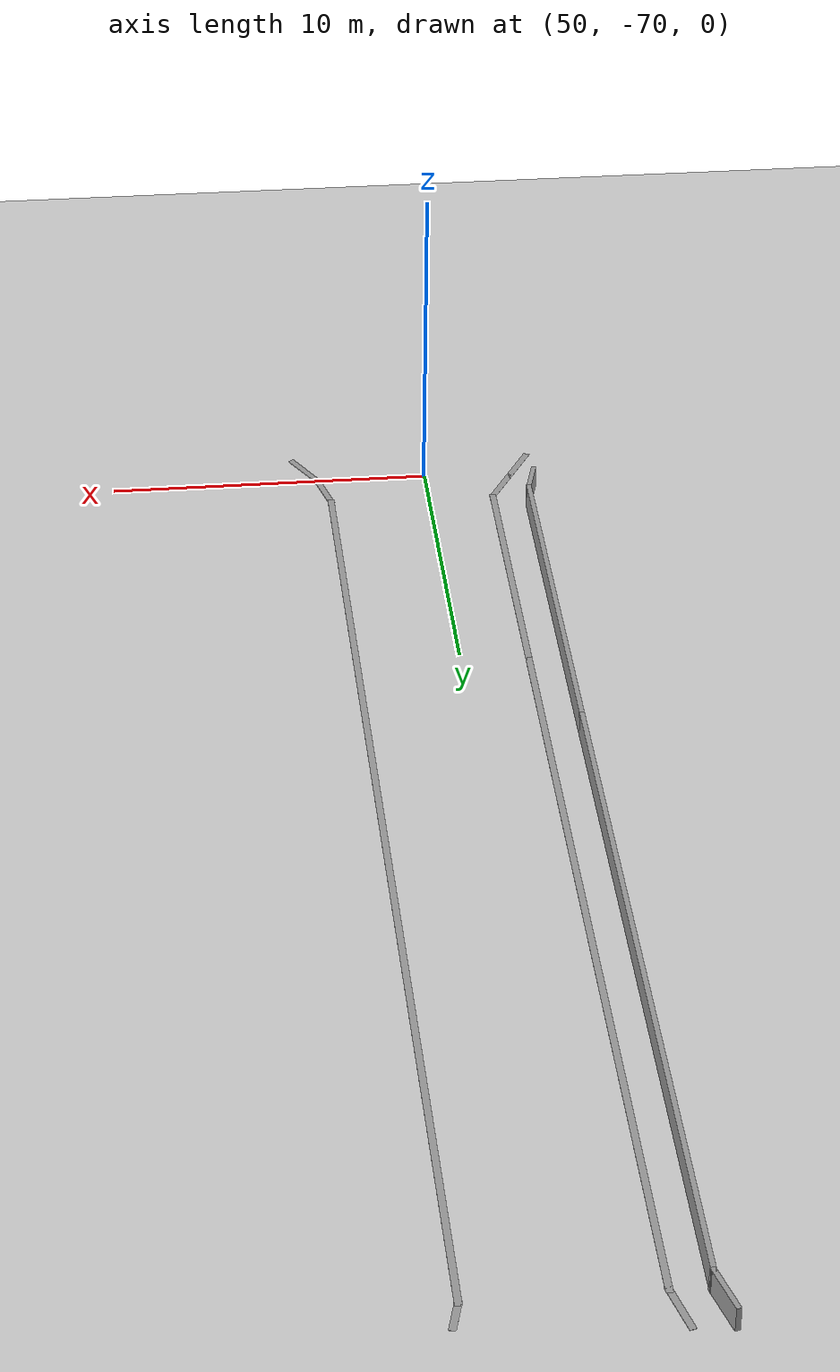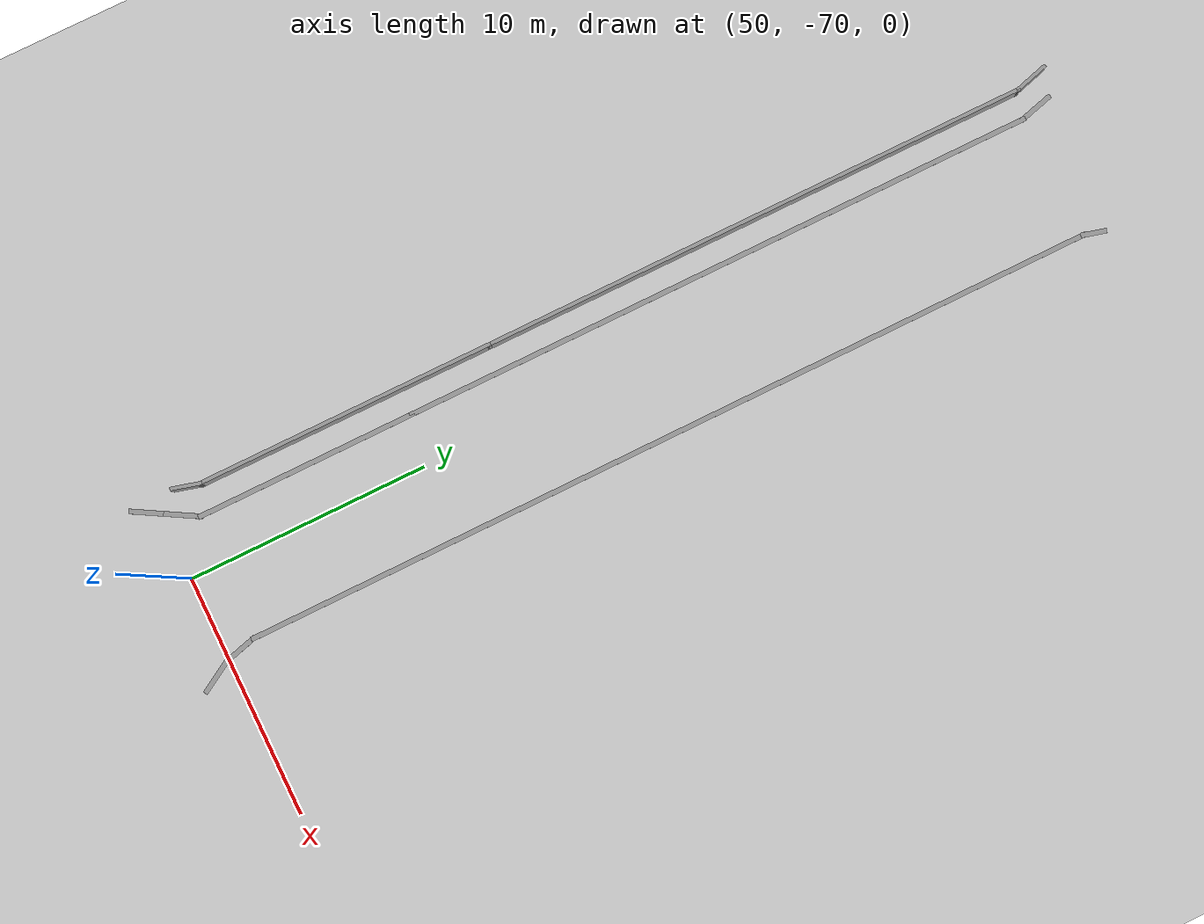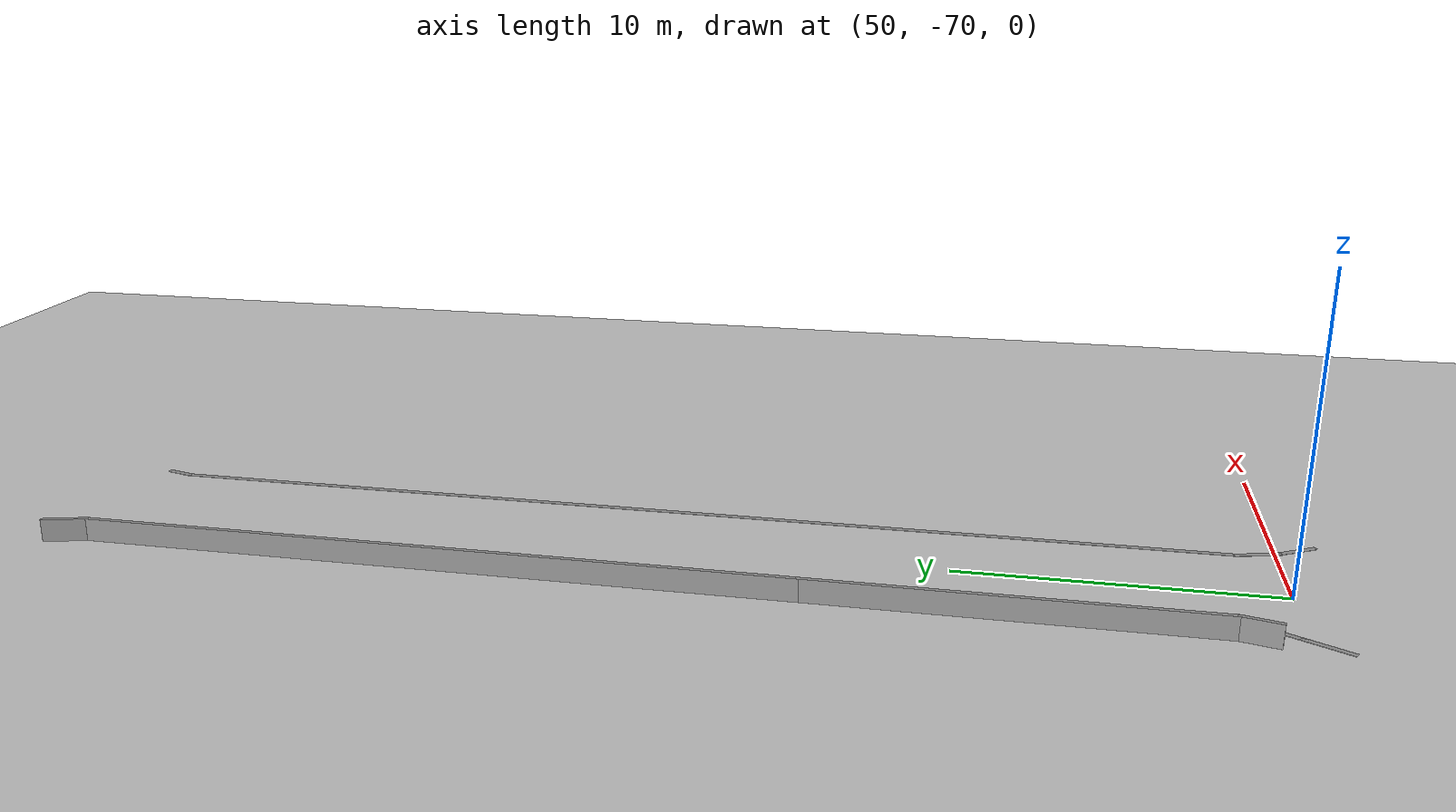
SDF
<sdf version="1.6">
 <world name="default">
  <model name="ground_plane">
   <static>1</static>
   <link name="link">
    <collision name="collision">
     <geometry><plane><normal>0 0 1</normal><size>100 100</size></plane></geometry>
     <surface>
      <contact><collide_bitmask>65535</collide_bitmask></contact>
      <friction><ode><mu>100</mu><mu2>50</mu2></ode></friction>
     </surface>
    </collision>
    <visual name="visual">
     <cast_shadows>0</cast_shadows>
     <geometry><plane><normal>0 0 1</normal><size>100 100</size></plane></geometry>
     <material>
      <script><uri>file://media/materials/scripts/gazebo.material</uri><name>Gazebo/Grey</name></script>
     </material>
    </visual>
   </link>
  </model>
  <model name="GercekDuvarSeritKoyu1">
   <link name="Wall_110">
    <pose>13.8411 -13.2151 0 0 -0 2.87941</pose>
    <inertial>
     <mass>1</mass>
     <inertia><ixx>1</ixx><ixy>0</ixy><ixz>0</ixz><iyy>1</iyy><iyz>0</iyz><izz>1</izz></inertia>
    </inertial>
    <visual name="Wall_110_Visual">
     <pose>0 0 0.375 0 -0 0</pose>
     <geometry><box><size>1.25 0.15 0.75</size></box></geometry>
     <material>
      <script><uri>file://media/materials/scripts/gazebo.material</uri><name>Gazebo/Grey</name></script>
      <ambient>0.5 0.5 0.5 1</ambient>
      <shader type="pixel"><normal_map>__default__</normal_map></shader>
      <diffuse>0.7 0.7 0.7 1</diffuse>
      <specular>0.01 0.01 0.01 1</specular>
      <emissive>0 0 0 1</emissive>
     </material>
     <meta><layer>0</layer></meta>
    </visual>
    <collision name="Wall_110_Collision">
     <pose>0 0 0.375 0 -0 0</pose>
     <geometry><box><size>1.25 0.15 0.75</size></box></geometry>
     <surface>
      <friction>
       <ode><mu>1</mu><mu2>1</mu2><fdir1>0 0 0</fdir1><slip1>0</slip1><slip2>0</slip2></ode>
       <torsional>
        <coefficient>1</coefficient>
        <patch_radius>0</patch_radius>
        <surface_radius>0</surface_radius>
        <use_patch_radius>1</use_patch_radius>
        <ode><slip>0</slip></ode>
       </torsional>
      </friction>
      <bounce><restitution_coefficient>0</restitution_coefficient><threshold>1e+06</threshold></bounce>
      <contact>
       <collide_without_contact>0</collide_without_contact>
       <collide_without_contact_bitmask>1</collide_without_contact_bitmask>
       <collide_bitmask>1</collide_bitmask>
       <ode>
        <soft_cfm>0</soft_cfm>
        <soft_erp>0.2</soft_erp>
        <kp>1e+13</kp>
        <kd>1</kd>
        <max_vel>0.01</max_vel>
        <min_depth>0</min_depth>
       </ode>
       <bullet>
        <split_impulse>1</split_impulse>
        <split_impulse_penetration_threshold>-0.01</split_impulse_penetration_threshold>
        <soft_cfm>0</soft_cfm>
        <soft_erp>0.2</soft_erp>
        <kp>1e+13</kp>
        <kd>1</kd>
       </bullet>
      </contact>
     </surface>
    </collision>
   </link>
   <link name="Wall_111">
    <pose>7.13506 -13.0626 0 0 -0 3.13997</pose>
    <inertial>
     <mass>1</mass>
     <inertia><ixx>1</ixx><ixy>0</ixy><ixz>0</ixz><iyy>1</iyy><iyz>0</iyz><izz>1</izz></inertia>
    </inertial>
    <visual name="Wall_111_Visual">
     <pose>0 0 0.375 0 -0 0</pose>
     <geometry><box><size>12.5 0.15 0.75</size></box></geometry>
     <material>
      <script><uri>file://media/materials/scripts/gazebo.material</uri><name>Gazebo/Grey</name></script>
      <ambient>0.5 0.5 0.5 1</ambient>
      <shader type="pixel"><normal_map>__default__</normal_map></shader>
      <diffuse>0.7 0.7 0.7 1</diffuse>
      <specular>0.01 0.01 0.01 1</specular>
      <emissive>0 0 0 1</emissive>
     </material>
     <meta><layer>0</layer></meta>
    </visual>
    <collision name="Wall_111_Collision">
     <pose>0 0 0.375 0 -0 0</pose>
     <geometry><box><size>12.5 0.15 0.75</size></box></geometry>
     <surface>
      <friction>
       <ode><mu>1</mu><mu2>1</mu2><fdir1>0 0 0</fdir1><slip1>0</slip1><slip2>0</slip2></ode>
       <torsional>
        <coefficient>1</coefficient>
        <patch_radius>0</patch_radius>
        <surface_radius>0</surface_radius>
        <use_patch_radius>1</use_patch_radius>
        <ode><slip>0</slip></ode>
       </torsional>
      </friction>
      <bounce><restitution_coefficient>0</restitution_coefficient><threshold>1e+06</threshold></bounce>
      <contact>
       <collide_without_contact>0</collide_without_contact>
       <collide_without_contact_bitmask>1</collide_without_contact_bitmask>
       <collide_bitmask>1</collide_bitmask>
       <ode>
        <soft_cfm>0</soft_cfm>
        <soft_erp>0.2</soft_erp>
        <kp>1e+13</kp>
        <kd>1</kd>
        <max_vel>0.01</max_vel>
        <min_depth>0</min_depth>
       </ode>
       <bullet>
        <split_impulse>1</split_impulse>
        <split_impulse_penetration_threshold>-0.01</split_impulse_penetration_threshold>
        <soft_cfm>0</soft_cfm>
        <soft_erp>0.2</soft_erp>
        <kp>1e+13</kp>
        <kd>1</kd>
       </bullet>
      </contact>
     </surface>
    </collision>
   </link>
   <link name="Wall_113">
    <pose>-10.5899 -13.0526 0 0 -0 3.14159</pose>
    <inertial>
     <mass>1</mass>
     <inertia><ixx>1</ixx><ixy>0</ixy><ixz>0</ixz><iyy>1</iyy><iyz>0</iyz><izz>1</izz></inertia>
    </inertial>
    <visual name="Wall_113_Visual">
     <pose>0 0 0.375 0 -0 0</pose>
     <geometry><box><size>23.25 0.15 0.75</size></box></geometry>
     <material>
      <script><uri>file://media/materials/scripts/gazebo.material</uri><name>Gazebo/Grey</name></script>
      <ambient>0.5 0.5 0.5 1</ambient>
      <shader type="pixel"><normal_map>__default__</normal_map></shader>
      <diffuse>0.7 0.7 0.7 1</diffuse>
      <specular>0.01 0.01 0.01 1</specular>
      <emissive>0 0 0 1</emissive>
     </material>
     <meta><layer>0</layer></meta>
    </visual>
    <collision name="Wall_113_Collision">
     <pose>0 0 0.375 0 -0 0</pose>
     <geometry><box><size>23.25 0.15 0.75</size></box></geometry>
     <surface>
      <friction>
       <ode><mu>1</mu><mu2>1</mu2><fdir1>0 0 0</fdir1><slip1>0</slip1><slip2>0</slip2></ode>
       <torsional>
        <coefficient>1</coefficient>
        <patch_radius>0</patch_radius>
        <surface_radius>0</surface_radius>
        <use_patch_radius>1</use_patch_radius>
        <ode><slip>0</slip></ode>
       </torsional>
      </friction>
      <bounce><restitution_coefficient>0</restitution_coefficient><threshold>1e+06</threshold></bounce>
      <contact>
       <collide_without_contact>0</collide_without_contact>
       <collide_without_contact_bitmask>1</collide_without_contact_bitmask>
       <collide_bitmask>1</collide_bitmask>
       <ode>
        <soft_cfm>0</soft_cfm>
        <soft_erp>0.2</soft_erp>
        <kp>1e+13</kp>
        <kd>1</kd>
        <max_vel>0.01</max_vel>
        <min_depth>0</min_depth>
       </ode>
       <bullet>
        <split_impulse>1</split_impulse>
        <split_impulse_penetration_threshold>-0.01</split_impulse_penetration_threshold>
        <soft_cfm>0</soft_cfm>
        <soft_erp>0.2</soft_erp>
        <kp>1e+13</kp>
        <kd>1</kd>
       </bullet>
      </contact>
     </surface>
    </collision>
   </link>
   <link name="Wall_114">
    <pose>-22.7919 -13.2376 0 0 0 -2.86512</pose>
    <inertial>
     <mass>1</mass>
     <inertia><ixx>1</ixx><ixy>0</ixy><ixz>0</ixz><iyy>1</iyy><iyz>0</iyz><izz>1</izz></inertia>
    </inertial>
    <visual name="Wall_114_Visual">
     <pose>0 0 0.375 0 -0 0</pose>
     <geometry><box><size>1.50579 0.15 0.75</size></box></geometry>
     <material>
      <script><uri>file://media/materials/scripts/gazebo.material</uri><name>Gazebo/Grey</name></script>
      <ambient>0.5 0.5 0.5 1</ambient>
      <shader type="pixel"><normal_map>__default__</normal_map></shader>
      <diffuse>0.7 0.7 0.7 1</diffuse>
      <specular>0.01 0.01 0.01 1</specular>
      <emissive>0 0 0 1</emissive>
     </material>
     <meta><layer>0</layer></meta>
    </visual>
    <collision name="Wall_114_Collision">
     <pose>0 0 0.375 0 -0 0</pose>
     <geometry><box><size>1.50579 0.15 0.75</size></box></geometry>
     <surface>
      <friction>
       <ode><mu>1</mu><mu2>1</mu2><fdir1>0 0 0</fdir1><slip1>0</slip1><slip2>0</slip2></ode>
       <torsional>
        <coefficient>1</coefficient>
        <patch_radius>0</patch_radius>
        <surface_radius>0</surface_radius>
        <use_patch_radius>1</use_patch_radius>
        <ode><slip>0</slip></ode>
       </torsional>
      </friction>
      <bounce><restitution_coefficient>0</restitution_coefficient><threshold>1e+06</threshold></bounce>
      <contact>
       <collide_without_contact>0</collide_without_contact>
       <collide_without_contact_bitmask>1</collide_without_contact_bitmask>
       <collide_bitmask>1</collide_bitmask>
       <ode>
        <soft_cfm>0</soft_cfm>
        <soft_erp>0.2</soft_erp>
        <kp>1e+13</kp>
        <kd>1</kd>
        <max_vel>0.01</max_vel>
        <min_depth>0</min_depth>
       </ode>
       <bullet>
        <split_impulse>1</split_impulse>
        <split_impulse_penetration_threshold>-0.01</split_impulse_penetration_threshold>
        <soft_cfm>0</soft_cfm>
        <soft_erp>0.2</soft_erp>
        <kp>1e+13</kp>
        <kd>1</kd>
       </bullet>
      </contact>
     </surface>
    </collision>
   </link>
   <link name="Wall_398">
    <pose>15.7111 -13.0251 0 0 -0 2.61831</pose>
    <visual name="Wall_398_Visual">
     <pose>0 0 0.005 0 -0 0</pose>
     <geometry><box><size>1.55029 0.2 0.01</size></box></geometry>
     <material>
      <script><uri>file://media/materials/scripts/gazebo.material</uri><name>Gazebo/Grey</name></script>
      <ambient>1 1 1 1</ambient>
      <shader type="pixel"/>
     </material>
     <meta><layer>0</layer></meta>
    </visual>
    <collision name="Wall_398_Collision">
     <pose>0 0 0.005 0 -0 0</pose>
     <geometry><box><size>1.55029 0.2 0.01</size></box></geometry>
     <surface>
      <friction>
       <ode><mu>1</mu><mu2>1</mu2><fdir1>0 0 0</fdir1><slip1>0</slip1><slip2>0</slip2></ode>
       <torsional>
        <coefficient>1</coefficient>
        <patch_radius>0</patch_radius>
        <surface_radius>0</surface_radius>
        <use_patch_radius>1</use_patch_radius>
        <ode><slip>0</slip></ode>
       </torsional>
      </friction>
      <bounce><restitution_coefficient>0</restitution_coefficient><threshold>1e+06</threshold></bounce>
      <contact>
       <collide_without_contact>0</collide_without_contact>
       <collide_without_contact_bitmask>1</collide_without_contact_bitmask>
       <collide_bitmask>1</collide_bitmask>
       <ode>
        <soft_cfm>0</soft_cfm>
        <soft_erp>0.2</soft_erp>
        <kp>1e+13</kp>
        <kd>1</kd>
        <max_vel>0.01</max_vel>
        <min_depth>0</min_depth>
       </ode>
       <bullet>
        <split_impulse>1</split_impulse>
        <split_impulse_penetration_threshold>-0.01</split_impulse_penetration_threshold>
        <soft_cfm>0</soft_cfm>
        <soft_erp>0.2</soft_erp>
        <kp>1e+13</kp>
        <kd>1</kd>
       </bullet>
      </contact>
     </surface>
    </collision>
   </link>
   <link name="Wall_399">
    <pose>14.5416 -12.3501 0 0 -0 2.61794</pose>
    <visual name="Wall_399_Visual">
     <pose>0 0 0.005 0 -0 0</pose>
     <geometry><box><size>1.54954 0.2 0.01</size></box></geometry>
     <material>
      <script><uri>file://media/materials/scripts/gazebo.material</uri><name>Gazebo/Grey</name></script>
      <ambient>1 1 1 1</ambient>
      <shader type="pixel"/>
     </material>
     <meta><layer>0</layer></meta>
    </visual>
    <collision name="Wall_399_Collision">
     <pose>0 0 0.005 0 -0 0</pose>
     <geometry><box><size>1.54954 0.2 0.01</size></box></geometry>
     <surface>
      <friction>
       <ode><mu>1</mu><mu2>1</mu2><fdir1>0 0 0</fdir1><slip1>0</slip1><slip2>0</slip2></ode>
       <torsional>
        <coefficient>1</coefficient>
        <patch_radius>0</patch_radius>
        <surface_radius>0</surface_radius>
        <use_patch_radius>1</use_patch_radius>
        <ode><slip>0</slip></ode>
       </torsional>
      </friction>
      <bounce><restitution_coefficient>0</restitution_coefficient><threshold>1e+06</threshold></bounce>
      <contact>
       <collide_without_contact>0</collide_without_contact>
       <collide_without_contact_bitmask>1</collide_without_contact_bitmask>
       <collide_bitmask>1</collide_bitmask>
       <ode>
        <soft_cfm>0</soft_cfm>
        <soft_erp>0.2</soft_erp>
        <kp>1e+13</kp>
        <kd>1</kd>
        <max_vel>0.01</max_vel>
        <min_depth>0</min_depth>
       </ode>
       <bullet>
        <split_impulse>1</split_impulse>
        <split_impulse_penetration_threshold>-0.01</split_impulse_penetration_threshold>
        <soft_cfm>0</soft_cfm>
        <soft_erp>0.2</soft_erp>
        <kp>1e+13</kp>
        <kd>1</kd>
       </bullet>
      </contact>
     </surface>
    </collision>
   </link>
   <link name="Wall_400">
    <pose>9.40705 -12.0126 0 0 -0 3.14159</pose>
    <visual name="Wall_400_Visual">
     <pose>0 0 0.005 0 -0 0</pose>
     <geometry><box><size>9.29969 0.2 0.01</size></box></geometry>
     <material>
      <script><uri>file://media/materials/scripts/gazebo.material</uri><name>Gazebo/Grey</name></script>
      <ambient>1 1 1 1</ambient>
      <shader type="pixel"/>
     </material>
     <meta><layer>0</layer></meta>
    </visual>
    <collision name="Wall_400_Collision">
     <pose>0 0 0.005 0 -0 0</pose>
     <geometry><box><size>9.29969 0.2 0.01</size></box></geometry>
     <surface>
      <friction>
       <ode><mu>1</mu><mu2>1</mu2><fdir1>0 0 0</fdir1><slip1>0</slip1><slip2>0</slip2></ode>
       <torsional>
        <coefficient>1</coefficient>
        <patch_radius>0</patch_radius>
        <surface_radius>0</surface_radius>
        <use_patch_radius>1</use_patch_radius>
        <ode><slip>0</slip></ode>
       </torsional>
      </friction>
      <bounce><restitution_coefficient>0</restitution_coefficient><threshold>1e+06</threshold></bounce>
      <contact>
       <collide_without_contact>0</collide_without_contact>
       <collide_without_contact_bitmask>1</collide_without_contact_bitmask>
       <collide_bitmask>1</collide_bitmask>
       <ode>
        <soft_cfm>0</soft_cfm>
        <soft_erp>0.2</soft_erp>
        <kp>1e+13</kp>
        <kd>1</kd>
        <max_vel>0.01</max_vel>
        <min_depth>0</min_depth>
       </ode>
       <bullet>
        <split_impulse>1</split_impulse>
        <split_impulse_penetration_threshold>-0.01</split_impulse_penetration_threshold>
        <soft_cfm>0</soft_cfm>
        <soft_erp>0.2</soft_erp>
        <kp>1e+13</kp>
        <kd>1</kd>
       </bullet>
      </contact>
     </surface>
    </collision>
   </link>
   <link name="Wall_402">
    <pose>-8.56794 -12.0126 0 0 -0 3.14159</pose>
    <visual name="Wall_402_Visual">
     <pose>0 0 0.005 0 -0 0</pose>
     <geometry><box><size>27.0497 0.2 0.01</size></box></geometry>
     <material>
      <script><uri>file://media/materials/scripts/gazebo.material</uri><name>Gazebo/Grey</name></script>
      <ambient>1 1 1 1</ambient>
      <shader type="pixel"/>
     </material>
     <meta><layer>0</layer></meta>
    </visual>
    <collision name="Wall_402_Collision">
     <pose>0 0 0.005 0 -0 0</pose>
     <geometry><box><size>27.0497 0.2 0.01</size></box></geometry>
     <surface>
      <friction>
       <ode><mu>1</mu><mu2>1</mu2><fdir1>0 0 0</fdir1><slip1>0</slip1><slip2>0</slip2></ode>
       <torsional>
        <coefficient>1</coefficient>
        <patch_radius>0</patch_radius>
        <surface_radius>0</surface_radius>
        <use_patch_radius>1</use_patch_radius>
        <ode><slip>0</slip></ode>
       </torsional>
      </friction>
      <bounce><restitution_coefficient>0</restitution_coefficient><threshold>1e+06</threshold></bounce>
      <contact>
       <collide_without_contact>0</collide_without_contact>
       <collide_without_contact_bitmask>1</collide_without_contact_bitmask>
       <collide_bitmask>1</collide_bitmask>
       <ode>
        <soft_cfm>0</soft_cfm>
        <soft_erp>0.2</soft_erp>
        <kp>1e+13</kp>
        <kd>1</kd>
        <max_vel>0.01</max_vel>
        <min_depth>0</min_depth>
       </ode>
       <bullet>
        <split_impulse>1</split_impulse>
        <split_impulse_penetration_threshold>-0.01</split_impulse_penetration_threshold>
        <soft_cfm>0</soft_cfm>
        <soft_erp>0.2</soft_erp>
        <kp>1e+13</kp>
        <kd>1</kd>
       </bullet>
      </contact>
     </surface>
    </collision>
   </link>
   <link name="Wall_404">
    <pose>-22.6449 -12.1876 0 0 0 -2.87937</pose>
    <visual name="Wall_404_Visual">
     <pose>0 0 0.005 0 -0 0</pose>
     <geometry><box><size>1.54974 0.2 0.01</size></box></geometry>
     <material>
      <script><uri>file://media/materials/scripts/gazebo.material</uri><name>Gazebo/Grey</name></script>
      <ambient>1 1 1 1</ambient>
      <shader type="pixel"/>
     </material>
     <meta><layer>0</layer></meta>
    </visual>
    <collision name="Wall_404_Collision">
     <pose>0 0 0.005 0 -0 0</pose>
     <geometry><box><size>1.54974 0.2 0.01</size></box></geometry>
     <surface>
      <friction>
       <ode><mu>1</mu><mu2>1</mu2><fdir1>0 0 0</fdir1><slip1>0</slip1><slip2>0</slip2></ode>
       <torsional>
        <coefficient>1</coefficient>
        <patch_radius>0</patch_radius>
        <surface_radius>0</surface_radius>
        <use_patch_radius>1</use_patch_radius>
        <ode><slip>0</slip></ode>
       </torsional>
      </friction>
      <bounce><restitution_coefficient>0</restitution_coefficient><threshold>1e+06</threshold></bounce>
      <contact>
       <collide_without_contact>0</collide_without_contact>
       <collide_without_contact_bitmask>1</collide_without_contact_bitmask>
       <collide_bitmask>1</collide_bitmask>
       <ode>
        <soft_cfm>0</soft_cfm>
        <soft_erp>0.2</soft_erp>
        <kp>1e+13</kp>
        <kd>1</kd>
        <max_vel>0.01</max_vel>
        <min_depth>0</min_depth>
       </ode>
       <bullet>
        <split_impulse>1</split_impulse>
        <split_impulse_penetration_threshold>-0.01</split_impulse_penetration_threshold>
        <soft_cfm>0</soft_cfm>
        <soft_erp>0.2</soft_erp>
        <kp>1e+13</kp>
        <kd>1</kd>
       </bullet>
      </contact>
     </surface>
    </collision>
   </link>
   <link name="Wall_526">
    <pose>-3.94694 -6.82159 0 0 -0 0</pose>
    <visual name="Wall_526_Visual">
     <pose>0 0 0.005 0 -0 0</pose>
     <geometry><box><size>36.2999 0.2 0.01</size></box></geometry>
     <material>
      <script><uri>file://media/materials/scripts/gazebo.material</uri><name>Gazebo/Grey</name></script>
      <ambient>1 1 1 1</ambient>
      <shader type="pixel"/>
     </material>
     <meta><layer>0</layer></meta>
    </visual>
    <collision name="Wall_526_Collision">
     <pose>0 0 0.005 0 -0 0</pose>
     <geometry><box><size>36.2999 0.2 0.01</size></box></geometry>
     <surface>
      <friction>
       <ode><mu>1</mu><mu2>1</mu2><fdir1>0 0 0</fdir1><slip1>0</slip1><slip2>0</slip2></ode>
       <torsional>
        <coefficient>1</coefficient>
        <patch_radius>0</patch_radius>
        <surface_radius>0</surface_radius>
        <use_patch_radius>1</use_patch_radius>
        <ode><slip>0</slip></ode>
       </torsional>
      </friction>
      <bounce><restitution_coefficient>0</restitution_coefficient><threshold>1e+06</threshold></bounce>
      <contact>
       <collide_without_contact>0</collide_without_contact>
       <collide_without_contact_bitmask>1</collide_without_contact_bitmask>
       <collide_bitmask>1</collide_bitmask>
       <ode>
        <soft_cfm>0</soft_cfm>
        <soft_erp>0.2</soft_erp>
        <kp>1e+13</kp>
        <kd>1</kd>
        <max_vel>0.01</max_vel>
        <min_depth>0</min_depth>
       </ode>
       <bullet>
        <split_impulse>1</split_impulse>
        <split_impulse_penetration_threshold>-0.01</split_impulse_penetration_threshold>
        <soft_cfm>0</soft_cfm>
        <soft_erp>0.2</soft_erp>
        <kp>1e+13</kp>
        <kd>1</kd>
       </bullet>
      </contact>
     </surface>
    </collision>
   </link>
   <link name="Wall_528">
    <pose>14.7551 -6.64709 0 0 -0 0.261509</pose>
    <visual name="Wall_528_Visual">
     <pose>0 0 0.005 0 -0 0</pose>
     <geometry><box><size>1.54978 0.2 0.01</size></box></geometry>
     <material>
      <script><uri>file://media/materials/scripts/gazebo.material</uri><name>Gazebo/Grey</name></script>
      <ambient>1 1 1 1</ambient>
      <shader type="pixel"/>
     </material>
     <meta><layer>0</layer></meta>
    </visual>
    <collision name="Wall_528_Collision">
     <pose>0 0 0.005 0 -0 0</pose>
     <geometry><box><size>1.54978 0.2 0.01</size></box></geometry>
     <surface>
      <friction>
       <ode><mu>1</mu><mu2>1</mu2><fdir1>0 0 0</fdir1><slip1>0</slip1><slip2>0</slip2></ode>
       <torsional>
        <coefficient>1</coefficient>
        <patch_radius>0</patch_radius>
        <surface_radius>0</surface_radius>
        <use_patch_radius>1</use_patch_radius>
        <ode><slip>0</slip></ode>
       </torsional>
      </friction>
      <bounce><restitution_coefficient>0</restitution_coefficient><threshold>1e+06</threshold></bounce>
      <contact>
       <collide_without_contact>0</collide_without_contact>
       <collide_without_contact_bitmask>1</collide_without_contact_bitmask>
       <collide_bitmask>1</collide_bitmask>
       <ode>
        <soft_cfm>0</soft_cfm>
        <soft_erp>0.2</soft_erp>
        <kp>1e+13</kp>
        <kd>1</kd>
        <max_vel>0.01</max_vel>
        <min_depth>0</min_depth>
       </ode>
       <bullet>
        <split_impulse>1</split_impulse>
        <split_impulse_penetration_threshold>-0.01</split_impulse_penetration_threshold>
        <soft_cfm>0</soft_cfm>
        <soft_erp>0.2</soft_erp>
        <kp>1e+13</kp>
        <kd>1</kd>
       </bullet>
      </contact>
     </surface>
    </collision>
   </link>
   <link name="Wall_529">
    <pose>15.9916 -6.12609 0 0 -0 0.535119</pose>
    <visual name="Wall_529_Visual">
     <pose>0 0 0.005 0 -0 0</pose>
     <geometry><box><size>1.55897 0.2 0.01</size></box></geometry>
     <material>
      <script><uri>file://media/materials/scripts/gazebo.material</uri><name>Gazebo/Grey</name></script>
      <ambient>1 1 1 1</ambient>
      <shader type="pixel"/>
     </material>
     <meta><layer>0</layer></meta>
    </visual>
    <collision name="Wall_529_Collision">
     <pose>0 0 0.005 0 -0 0</pose>
     <geometry><box><size>1.55897 0.2 0.01</size></box></geometry>
     <surface>
      <friction>
       <ode><mu>1</mu><mu2>1</mu2><fdir1>0 0 0</fdir1><slip1>0</slip1><slip2>0</slip2></ode>
       <torsional>
        <coefficient>1</coefficient>
        <patch_radius>0</patch_radius>
        <surface_radius>0</surface_radius>
        <use_patch_radius>1</use_patch_radius>
        <ode><slip>0</slip></ode>
       </torsional>
      </friction>
      <bounce><restitution_coefficient>0</restitution_coefficient><threshold>1e+06</threshold></bounce>
      <contact>
       <collide_without_contact>0</collide_without_contact>
       <collide_without_contact_bitmask>1</collide_without_contact_bitmask>
       <collide_bitmask>1</collide_bitmask>
       <ode>
        <soft_cfm>0</soft_cfm>
        <soft_erp>0.2</soft_erp>
        <kp>1e+13</kp>
        <kd>1</kd>
        <max_vel>0.01</max_vel>
        <min_depth>0</min_depth>
       </ode>
       <bullet>
        <split_impulse>1</split_impulse>
        <split_impulse_penetration_threshold>-0.01</split_impulse_penetration_threshold>
        <soft_cfm>0</soft_cfm>
        <soft_erp>0.2</soft_erp>
        <kp>1e+13</kp>
        <kd>1</kd>
       </bullet>
      </contact>
     </surface>
    </collision>
   </link>
   <link name="Wall_581">
    <pose>-22.4074 -6.71159 0 0 -0 2.87978</pose>
    <visual name="Wall_581_Visual">
     <pose>0 0 0.005 0 -0 0</pose>
     <geometry><box><size>1.04997 0.2 0.01</size></box></geometry>
     <material>
      <script><uri>file://media/materials/scripts/gazebo.material</uri><name>Gazebo/Grey</name></script>
      <ambient>1 1 1 1</ambient>
      <shader type="pixel"/>
     </material>
     <meta><layer>0</layer></meta>
    </visual>
    <collision name="Wall_581_Collision">
     <pose>0 0 0.005 0 -0 0</pose>
     <geometry><box><size>1.04997 0.2 0.01</size></box></geometry>
     <surface>
      <friction>
       <ode><mu>1</mu><mu2>1</mu2><fdir1>0 0 0</fdir1><slip1>0</slip1><slip2>0</slip2></ode>
       <torsional>
        <coefficient>1</coefficient>
        <patch_radius>0</patch_radius>
        <surface_radius>0</surface_radius>
        <use_patch_radius>1</use_patch_radius>
        <ode><slip>0</slip></ode>
       </torsional>
      </friction>
      <bounce><restitution_coefficient>0</restitution_coefficient><threshold>1e+06</threshold></bounce>
      <contact>
       <collide_without_contact>0</collide_without_contact>
       <collide_without_contact_bitmask>1</collide_without_contact_bitmask>
       <collide_bitmask>1</collide_bitmask>
       <ode>
        <soft_cfm>0</soft_cfm>
        <soft_erp>0.2</soft_erp>
        <kp>1e+13</kp>
        <kd>1</kd>
        <max_vel>0.01</max_vel>
        <min_depth>0</min_depth>
       </ode>
       <bullet>
        <split_impulse>1</split_impulse>
        <split_impulse_penetration_threshold>-0.01</split_impulse_penetration_threshold>
        <soft_cfm>0</soft_cfm>
        <soft_erp>0.2</soft_erp>
        <kp>1e+13</kp>
        <kd>1</kd>
       </bullet>
      </contact>
     </surface>
    </collision>
   </link>
   <static>1</static>
   <pose>59.9324 -54.7034 -0 0 0 -1.5695</pose>
  </model>
 </world>
</sdf>
